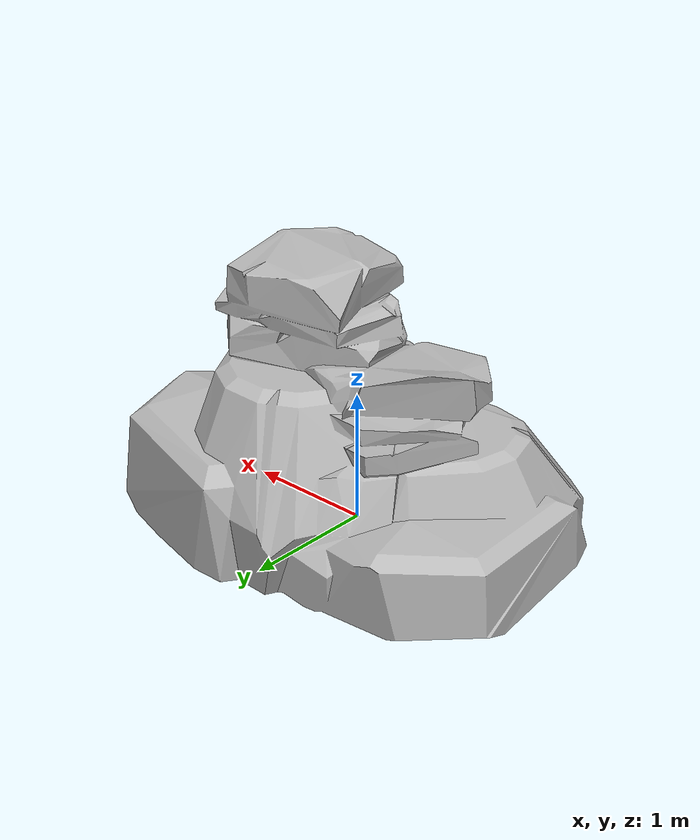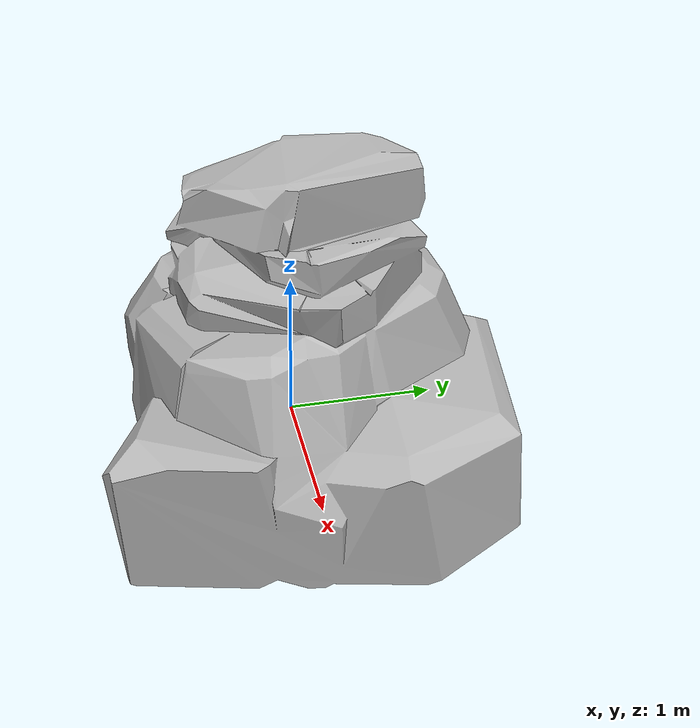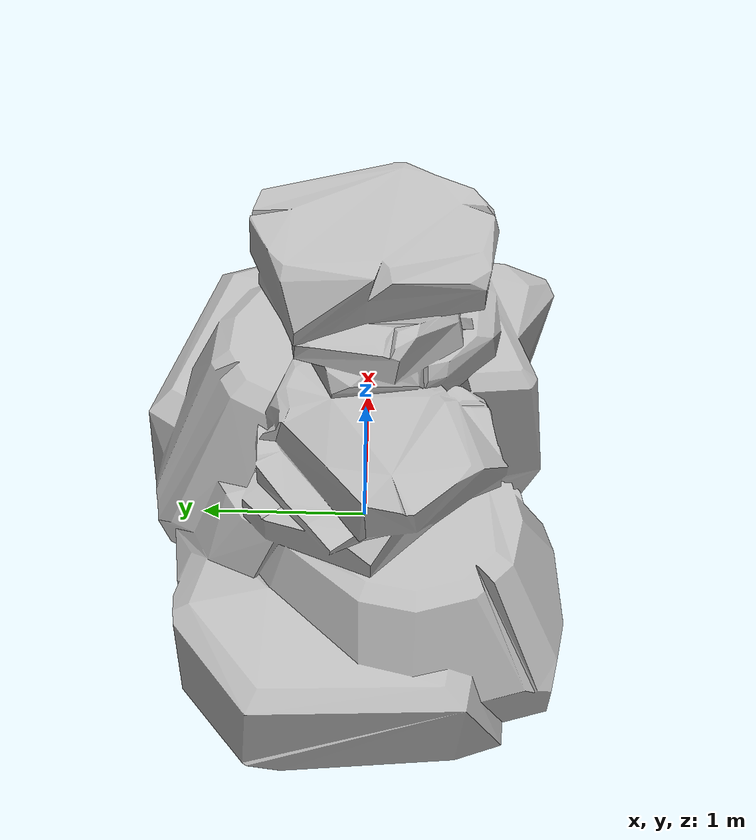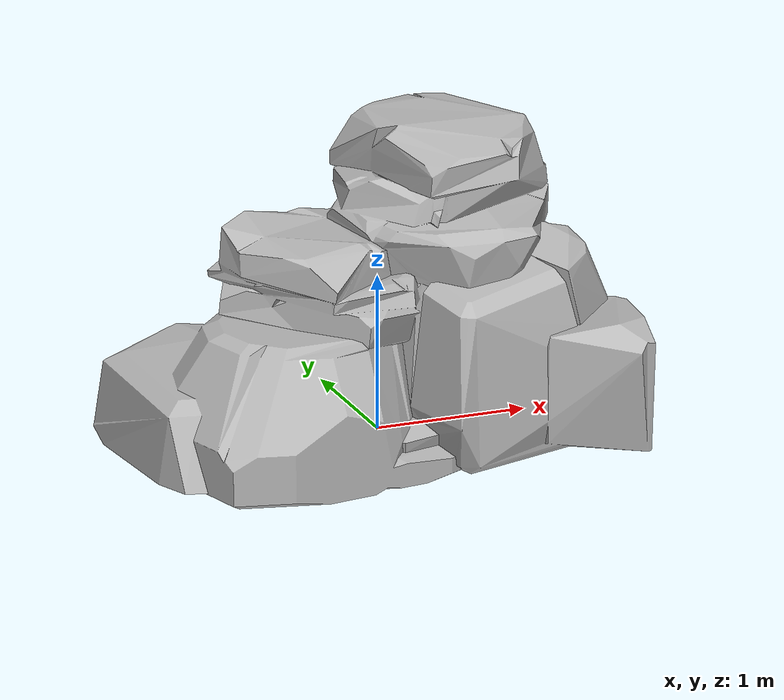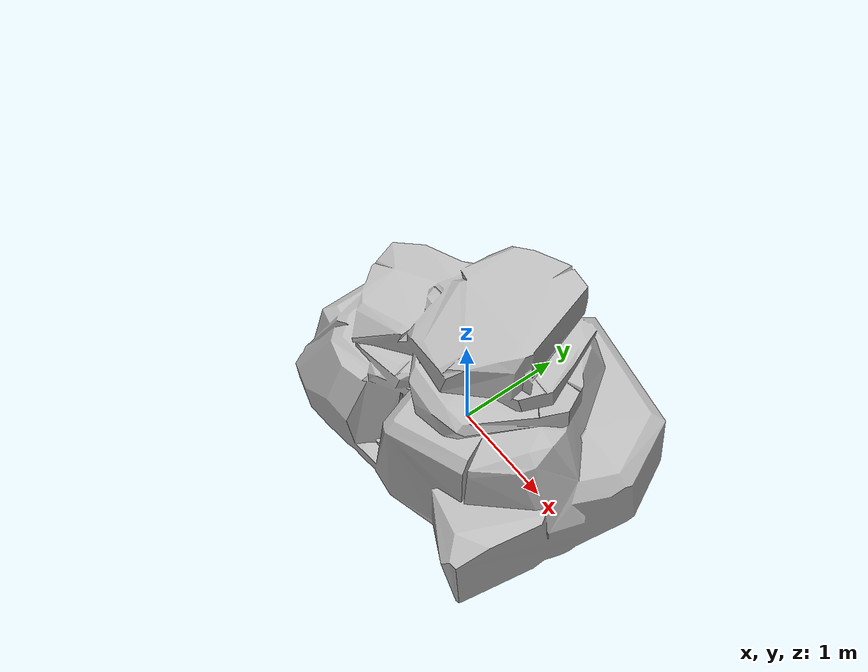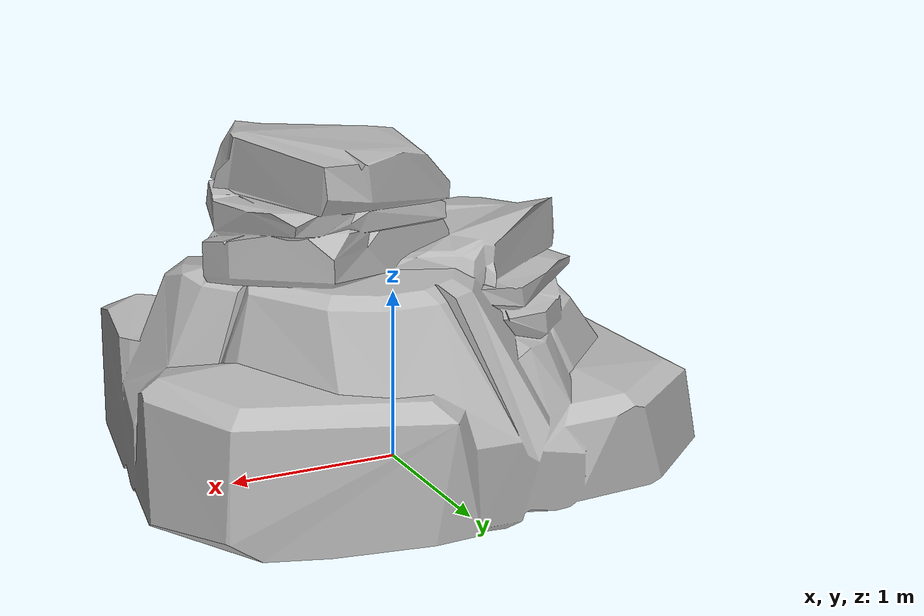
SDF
<?xml version='1.0'?>
<sdf version='1.6'>
  <model name='rock'>
    <link name='link_1'>
         <visual name='visual'>
        <pose frame=''>0 0 0 0 -0 0</pose>
        <geometry>
          <mesh>
            <uri>model://rock/meshes/rock.dae</uri>
            <scale>0.2 0.2 0.2</scale>
          </mesh>
        </geometry>
        <cast_shadows>1</cast_shadows>
        <transparency>0</transparency>
      </visual>

      <collision name='collision'>
        <laser_retro>0</laser_retro>
        <max_contacts>10</max_contacts>
        <pose frame=''>0 0 0 0 -0 0</pose>
        <geometry>
          <mesh>
            <uri>model://rock/meshes/rock.dae</uri>
            <scale>0.2 0.2 0.2</scale>
          </mesh>
        </geometry>
     </collision>

    </link>

    <static>1</static>
    <allow_auto_disable>1</allow_auto_disable>
  </model>
</sdf>
